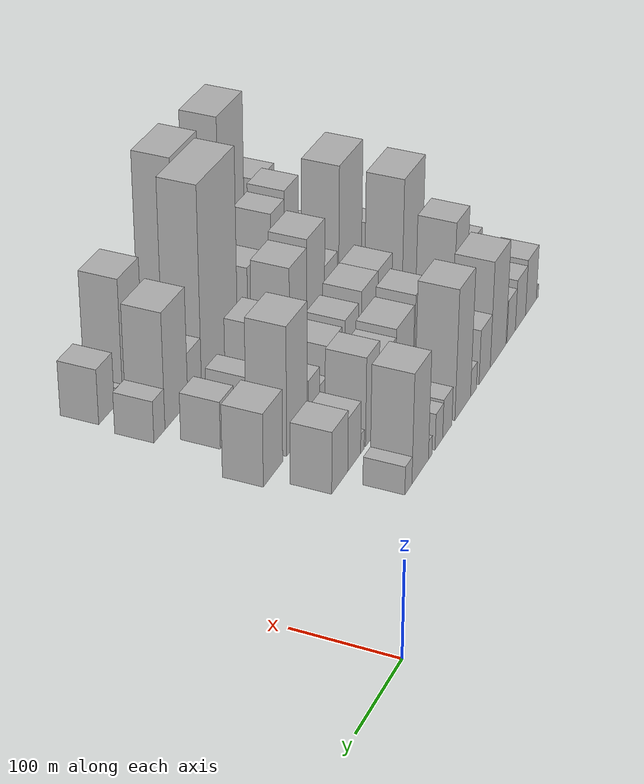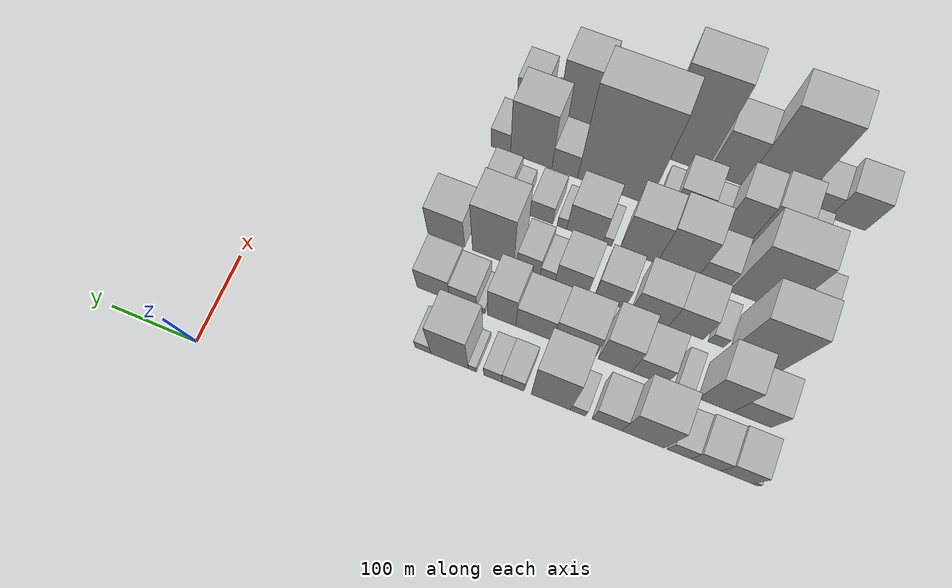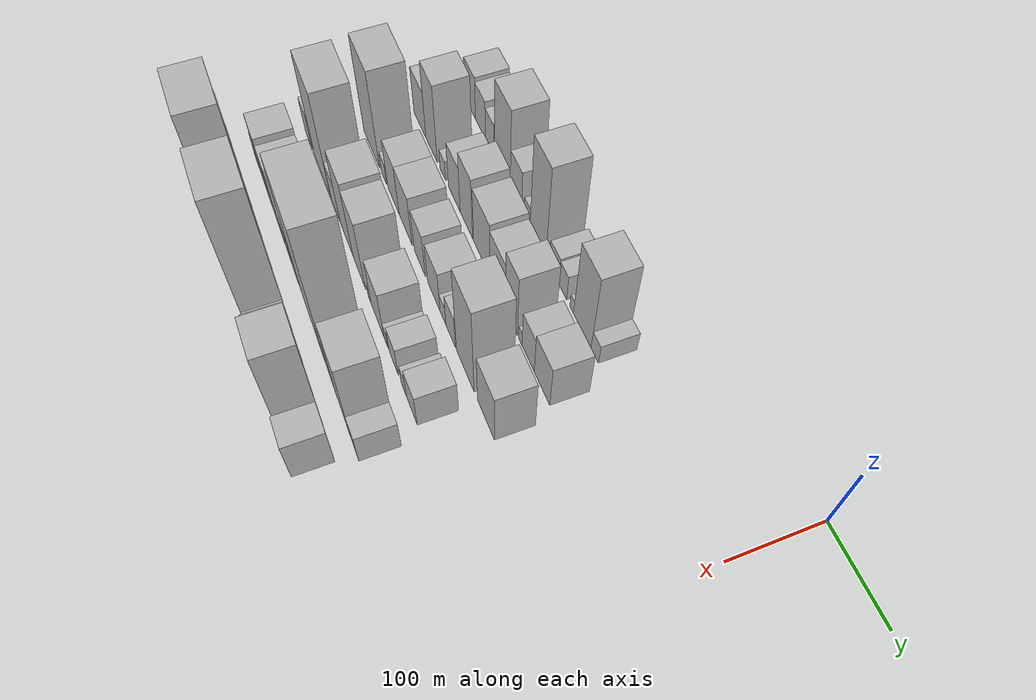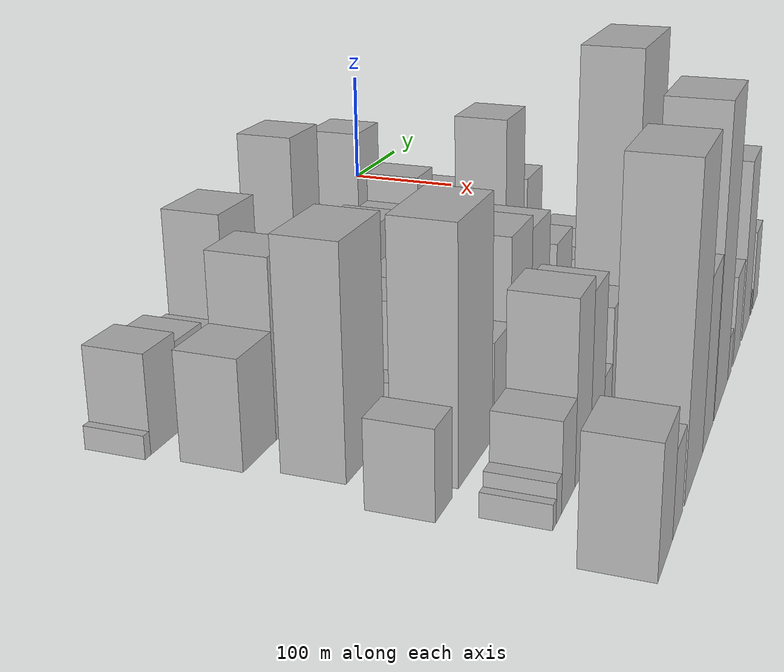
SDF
<sdf version="1.6">
 <world name="default">
  <model name="building_12">
   <static>1</static>
   <pose>100.0000 -579.2026 0 0.000000 0.000000 0.000000</pose>
   <link name="link">
    <pose>0 0 7.50 0 0 0</pose>
    <collision name="collision"><geometry><box><size>40.0000 6.0798 15.0000</size></box></geometry></collision>
    <visual name="visual">
     <cast_shadows>0</cast_shadows>
     <geometry><box><size>40.0000 6.0798 15.0000</size></box></geometry>
     <material>
      <script>
       <uri>model://HANNAS_wall/materials/scripts</uri>
       <uri>model://HANNAS_wall/materials/textures</uri>
       <name>vrc/HANNAS_wall</name>
      </script>
     </material>
    </visual>
   </link>
  </model>
  <model name="building_13">
   <static>1</static>
   <pose>100.0000 -559.5826 0 0.000000 0.000000 0.000000</pose>
   <link name="link">
    <pose>0 0 31.50 0 0 0</pose>
    <collision name="collision"><geometry><box><size>40.0000 33.1601 63.0000</size></box></geometry></collision>
    <visual name="visual">
     <cast_shadows>0</cast_shadows>
     <geometry><box><size>40.0000 33.1601 63.0000</size></box></geometry>
     <material>
      <script>
       <uri>model://HANNAS_wall/materials/scripts</uri>
       <uri>model://HANNAS_wall/materials/textures</uri>
       <name>vrc/HANNAS_wall</name>
      </script>
     </material>
    </visual>
   </link>
  </model>
  <model name="building_14">
   <static>1</static>
   <pose>100.0000 -527.5741 0 0.000000 0.000000 0.000000</pose>
   <link name="link">
    <pose>0 0 28.50 0 0 0</pose>
    <collision name="collision"><geometry><box><size>40.0000 30.8569 57.0000</size></box></geometry></collision>
    <visual name="visual">
     <cast_shadows>0</cast_shadows>
     <geometry><box><size>40.0000 30.8569 57.0000</size></box></geometry>
     <material>
      <script>
       <uri>model://HANNAS_wall/materials/scripts</uri>
       <uri>model://HANNAS_wall/materials/textures</uri>
       <name>vrc/HANNAS_wall</name>
      </script>
     </material>
    </visual>
   </link>
  </model>
  <model name="building_15">
   <static>1</static>
   <pose>100.0000 -499.6027 0 0.000000 0.000000 0.000000</pose>
   <link name="link">
    <pose>0 0 24.00 0 0 0</pose>
    <collision name="collision"><geometry><box><size>40.0000 25.0861 48.0000</size></box></geometry></collision>
    <visual name="visual">
     <cast_shadows>0</cast_shadows>
     <geometry><box><size>40.0000 25.0861 48.0000</size></box></geometry>
     <material>
      <script>
       <uri>model://HANNAS_wall/materials/scripts</uri>
       <uri>model://HANNAS_wall/materials/textures</uri>
       <name>vrc/HANNAS_wall</name>
      </script>
     </material>
    </visual>
   </link>
  </model>
  <model name="building_16">
   <static>1</static>
   <pose>100.0000 -461.4363 0 0.000000 0.000000 0.000000</pose>
   <link name="link">
    <pose>0 0 58.50 0 0 0</pose>
    <collision name="collision"><geometry><box><size>40.0000 45.2466 117.0000</size></box></geometry></collision>
    <visual name="visual">
     <cast_shadows>0</cast_shadows>
     <geometry><box><size>40.0000 45.2466 117.0000</size></box></geometry>
     <material>
      <script>
       <uri>model://HANNAS_wall/materials/scripts</uri>
       <uri>model://HANNAS_wall/materials/textures</uri>
       <name>vrc/HANNAS_wall</name>
      </script>
     </material>
    </visual>
   </link>
  </model>
  <model name="building_17">
   <static>1</static>
   <pose>100.0000 -422.9054 0 0.000000 0.000000 0.000000</pose>
   <link name="link">
    <pose>0 0 30.00 0 0 0</pose>
    <collision name="collision"><geometry><box><size>40.0000 31.8152 60.0000</size></box></geometry></collision>
    <visual name="visual">
     <cast_shadows>0</cast_shadows>
     <geometry><box><size>40.0000 31.8152 60.0000</size></box></geometry>
     <material>
      <script>
       <uri>model://HANNAS_wall/materials/scripts</uri>
       <uri>model://HANNAS_wall/materials/textures</uri>
       <name>vrc/HANNAS_wall</name>
      </script>
     </material>
    </visual>
   </link>
  </model>
  <model name="building_18">
   <static>1</static>
   <pose>100.0000 -391.7450 0 0.000000 0.000000 0.000000</pose>
   <link name="link">
    <pose>0 0 15.00 0 0 0</pose>
    <collision name="collision"><geometry><box><size>40.0000 16.5057 30.0000</size></box></geometry></collision>
    <visual name="visual">
     <cast_shadows>0</cast_shadows>
     <geometry><box><size>40.0000 16.5057 30.0000</size></box></geometry>
     <material>
      <script>
       <uri>model://HANNAS_wall/materials/scripts</uri>
       <uri>model://HANNAS_wall/materials/textures</uri>
       <name>vrc/HANNAS_wall</name>
      </script>
     </material>
    </visual>
   </link>
  </model>
  <model name="building_19">
   <static>1</static>
   <pose>100.0000 -362.2760 0 0.000000 0.000000 0.000000</pose>
   <link name="link">
    <pose>0 0 70.50 0 0 0</pose>
    <collision name="collision"><geometry><box><size>40.0000 42.4322 141.0000</size></box></geometry></collision>
    <visual name="visual">
     <cast_shadows>0</cast_shadows>
     <geometry><box><size>40.0000 42.4322 141.0000</size></box></geometry>
     <material>
      <script>
       <uri>model://HANNAS_wall/materials/scripts</uri>
       <uri>model://HANNAS_wall/materials/textures</uri>
       <name>vrc/HANNAS_wall</name>
      </script>
     </material>
    </visual>
   </link>
  </model>
  <model name="building_20">
   <static>1</static>
   <pose>100.0000 -320.8632 0 0.000000 0.000000 0.000000</pose>
   <link name="link">
    <pose>0 0 21.00 0 0 0</pose>
    <collision name="collision"><geometry><box><size>40.0000 24.3934 42.0000</size></box></geometry></collision>
    <visual name="visual">
     <cast_shadows>0</cast_shadows>
     <geometry><box><size>40.0000 24.3934 42.0000</size></box></geometry>
     <material>
      <script>
       <uri>model://HANNAS_wall/materials/scripts</uri>
       <uri>model://HANNAS_wall/materials/textures</uri>
       <name>vrc/HANNAS_wall</name>
      </script>
     </material>
    </visual>
   </link>
  </model>
  <model name="building_21">
   <static>1</static>
   <pose>100.0000 -298.7155 0 0.000000 0.000000 0.000000</pose>
   <link name="link">
    <pose>0 0 19.50 0 0 0</pose>
    <collision name="collision"><geometry><box><size>40.0000 19.9018 39.0000</size></box></geometry></collision>
    <visual name="visual">
     <cast_shadows>0</cast_shadows>
     <geometry><box><size>40.0000 19.9018 39.0000</size></box></geometry>
     <material>
      <script>
       <uri>model://HANNAS_wall/materials/scripts</uri>
       <uri>model://HANNAS_wall/materials/textures</uri>
       <name>vrc/HANNAS_wall</name>
      </script>
     </material>
    </visual>
   </link>
  </model>
  <model name="building_22">
   <static>1</static>
   <pose>100.0000 -276.2266 0 0.000000 0.000000 0.000000</pose>
   <link name="link">
    <pose>0 0 10.50 0 0 0</pose>
    <collision name="collision"><geometry><box><size>40.0000 9.0762 21.0000</size></box></geometry></collision>
    <visual name="visual">
     <cast_shadows>0</cast_shadows>
     <geometry><box><size>40.0000 9.0762 21.0000</size></box></geometry>
     <material>
      <script>
       <uri>model://HANNAS_wall/materials/scripts</uri>
       <uri>model://HANNAS_wall/materials/textures</uri>
       <name>vrc/HANNAS_wall</name>
      </script>
     </material>
    </visual>
   </link>
  </model>
  <model name="building_23">
   <static>1</static>
   <pose>100.0000 -250.9296 0 0.000000 0.000000 0.000000</pose>
   <link name="link">
    <pose>0 0 58.50 0 0 0</pose>
    <collision name="collision"><geometry><box><size>40.0000 41.5178 117.0000</size></box></geometry></collision>
    <visual name="visual">
     <cast_shadows>0</cast_shadows>
     <geometry><box><size>40.0000 41.5178 117.0000</size></box></geometry>
     <material>
      <script>
       <uri>model://HANNAS_wall/materials/scripts</uri>
       <uri>model://HANNAS_wall/materials/textures</uri>
       <name>vrc/HANNAS_wall</name>
      </script>
     </material>
    </visual>
   </link>
  </model>
  <model name="building_24">
   <static>1</static>
   <pose>100.0000 -221.4806 0 0.000000 0.000000 0.000000</pose>
   <link name="link">
    <pose>0 0 15.00 0 0 0</pose>
    <collision name="collision"><geometry><box><size>40.0000 17.3802 30.0000</size></box></geometry></collision>
    <visual name="visual">
     <cast_shadows>0</cast_shadows>
     <geometry><box><size>40.0000 17.3802 30.0000</size></box></geometry>
     <material>
      <script>
       <uri>model://HANNAS_wall/materials/scripts</uri>
       <uri>model://HANNAS_wall/materials/textures</uri>
       <name>vrc/HANNAS_wall</name>
      </script>
     </material>
    </visual>
   </link>
  </model>
  <model name="building_71">
   <static>1</static>
   <pose>160.0000 -557.1266 0 0.000000 0.000000 0.000000</pose>
   <link name="link">
    <pose>0 0 34.50 0 0 0</pose>
    <collision name="collision"><geometry><box><size>40.0000 40.5918 69.0000</size></box></geometry></collision>
    <visual name="visual">
     <cast_shadows>0</cast_shadows>
     <geometry><box><size>40.0000 40.5918 69.0000</size></box></geometry>
     <material>
      <script>
       <uri>model://HANNAS_wall/materials/scripts</uri>
       <uri>model://HANNAS_wall/materials/textures</uri>
       <name>vrc/HANNAS_wall</name>
      </script>
     </material>
    </visual>
   </link>
  </model>
  <model name="building_72">
   <static>1</static>
   <pose>160.0000 -518.2786 0 0.000000 0.000000 0.000000</pose>
   <link name="link">
    <pose>0 0 57.00 0 0 0</pose>
    <collision name="collision"><geometry><box><size>40.0000 37.1042 114.0000</size></box></geometry></collision>
    <visual name="visual">
     <cast_shadows>0</cast_shadows>
     <geometry><box><size>40.0000 37.1042 114.0000</size></box></geometry>
     <material>
      <script>
       <uri>model://HANNAS_wall/materials/scripts</uri>
       <uri>model://HANNAS_wall/materials/textures</uri>
       <name>vrc/HANNAS_wall</name>
      </script>
     </material>
    </visual>
   </link>
  </model>
  <model name="building_73">
   <static>1</static>
   <pose>160.0000 -481.8980 0 0.000000 0.000000 0.000000</pose>
   <link name="link">
    <pose>0 0 15.00 0 0 0</pose>
    <collision name="collision"><geometry><box><size>40.0000 17.6572 30.0000</size></box></geometry></collision>
    <visual name="visual">
     <cast_shadows>0</cast_shadows>
     <geometry><box><size>40.0000 17.6572 30.0000</size></box></geometry>
     <material>
      <script>
       <uri>model://HANNAS_wall/materials/scripts</uri>
       <uri>model://HANNAS_wall/materials/textures</uri>
       <name>vrc/HANNAS_wall</name>
      </script>
     </material>
    </visual>
   </link>
  </model>
  <model name="building_74">
   <static>1</static>
   <pose>160.0000 -446.1286 0 0.000000 0.000000 0.000000</pose>
   <link name="link">
    <pose>0 0 34.50 0 0 0</pose>
    <collision name="collision"><geometry><box><size>40.0000 35.8816 69.0000</size></box></geometry></collision>
    <visual name="visual">
     <cast_shadows>0</cast_shadows>
     <geometry><box><size>40.0000 35.8816 69.0000</size></box></geometry>
     <material>
      <script>
       <uri>model://HANNAS_wall/materials/scripts</uri>
       <uri>model://HANNAS_wall/materials/textures</uri>
       <name>vrc/HANNAS_wall</name>
      </script>
     </material>
    </visual>
   </link>
  </model>
  <model name="building_75">
   <static>1</static>
   <pose>160.0000 -409.8709 0 0.000000 0.000000 0.000000</pose>
   <link name="link">
    <pose>0 0 46.50 0 0 0</pose>
    <collision name="collision"><geometry><box><size>40.0000 36.6338 93.0000</size></box></geometry></collision>
    <visual name="visual">
     <cast_shadows>0</cast_shadows>
     <geometry><box><size>40.0000 36.6338 93.0000</size></box></geometry>
     <material>
      <script>
       <uri>model://HANNAS_wall/materials/scripts</uri>
       <uri>model://HANNAS_wall/materials/textures</uri>
       <name>vrc/HANNAS_wall</name>
      </script>
     </material>
    </visual>
   </link>
  </model>
  <model name="building_76">
   <static>1</static>
   <pose>160.0000 -365.3624 0 0.000000 0.000000 0.000000</pose>
   <link name="link">
    <pose>0 0 42.00 0 0 0</pose>
    <collision name="collision"><geometry><box><size>40.0000 46.3833 84.0000</size></box></geometry></collision>
    <visual name="visual">
     <cast_shadows>0</cast_shadows>
     <geometry><box><size>40.0000 46.3833 84.0000</size></box></geometry>
     <material>
      <script>
       <uri>model://HANNAS_wall/materials/scripts</uri>
       <uri>model://HANNAS_wall/materials/textures</uri>
       <name>vrc/HANNAS_wall</name>
      </script>
     </material>
    </visual>
   </link>
  </model>
  <model name="building_77">
   <static>1</static>
   <pose>160.0000 -321.1970 0 0.000000 0.000000 0.000000</pose>
   <link name="link">
    <pose>0 0 37.50 0 0 0</pose>
    <collision name="collision"><geometry><box><size>40.0000 41.9475 75.0000</size></box></geometry></collision>
    <visual name="visual">
     <cast_shadows>0</cast_shadows>
     <geometry><box><size>40.0000 41.9475 75.0000</size></box></geometry>
     <material>
      <script>
       <uri>model://HANNAS_wall/materials/scripts</uri>
       <uri>model://HANNAS_wall/materials/textures</uri>
       <name>vrc/HANNAS_wall</name>
      </script>
     </material>
    </visual>
   </link>
  </model>
  <model name="building_78">
   <static>1</static>
   <pose>160.0000 -284.4515 0 0.000000 0.000000 0.000000</pose>
   <link name="link">
    <pose>0 0 48.00 0 0 0</pose>
    <collision name="collision"><geometry><box><size>40.0000 31.5434 96.0000</size></box></geometry></collision>
    <visual name="visual">
     <cast_shadows>0</cast_shadows>
     <geometry><box><size>40.0000 31.5434 96.0000</size></box></geometry>
     <material>
      <script>
       <uri>model://HANNAS_wall/materials/scripts</uri>
       <uri>model://HANNAS_wall/materials/textures</uri>
       <name>vrc/HANNAS_wall</name>
      </script>
     </material>
    </visual>
   </link>
  </model>
  <model name="building_79">
   <static>1</static>
   <pose>160.0000 -261.2830 0 0.000000 0.000000 0.000000</pose>
   <link name="link">
    <pose>0 0 10.50 0 0 0</pose>
    <collision name="collision"><geometry><box><size>40.0000 8.7937 21.0000</size></box></geometry></collision>
    <visual name="visual">
     <cast_shadows>0</cast_shadows>
     <geometry><box><size>40.0000 8.7937 21.0000</size></box></geometry>
     <material>
      <script>
       <uri>model://HANNAS_wall/materials/scripts</uri>
       <uri>model://HANNAS_wall/materials/textures</uri>
       <name>vrc/HANNAS_wall</name>
      </script>
     </material>
    </visual>
   </link>
  </model>
  <model name="building_80">
   <static>1</static>
   <pose>160.0000 -241.4969 0 0.000000 0.000000 0.000000</pose>
   <link name="link">
    <pose>0 0 28.50 0 0 0</pose>
    <collision name="collision"><geometry><box><size>40.0000 30.7783 57.0000</size></box></geometry></collision>
    <visual name="visual">
     <cast_shadows>0</cast_shadows>
     <geometry><box><size>40.0000 30.7783 57.0000</size></box></geometry>
     <material>
      <script>
       <uri>model://HANNAS_wall/materials/scripts</uri>
       <uri>model://HANNAS_wall/materials/textures</uri>
       <name>vrc/HANNAS_wall</name>
      </script>
     </material>
    </visual>
   </link>
  </model>
  <model name="building_81">
   <static>1</static>
   <pose>160.0000 -207.3375 0 0.000000 0.000000 0.000000</pose>
   <link name="link">
    <pose>0 0 33.00 0 0 0</pose>
    <collision name="collision"><geometry><box><size>40.0000 37.5405 66.0000</size></box></geometry></collision>
    <visual name="visual">
     <cast_shadows>0</cast_shadows>
     <geometry><box><size>40.0000 37.5405 66.0000</size></box></geometry>
     <material>
      <script>
       <uri>model://HANNAS_wall/materials/scripts</uri>
       <uri>model://HANNAS_wall/materials/textures</uri>
       <name>vrc/HANNAS_wall</name>
      </script>
     </material>
    </visual>
   </link>
  </model>
  <model name="building_122">
   <static>1</static>
   <pose>220.0000 -542.9478 0 0.000000 0.000000 0.000000</pose>
   <link name="link">
    <pose>0 0 70.50 0 0 0</pose>
    <collision name="collision"><geometry><box><size>40.0000 56.3387 141.0000</size></box></geometry></collision>
    <visual name="visual">
     <cast_shadows>0</cast_shadows>
     <geometry><box><size>40.0000 56.3387 141.0000</size></box></geometry>
     <material>
      <script>
       <uri>model://HANNAS_wall/materials/scripts</uri>
       <uri>model://HANNAS_wall/materials/textures</uri>
       <name>vrc/HANNAS_wall</name>
      </script>
     </material>
    </visual>
   </link>
  </model>
  <model name="building_123">
   <static>1</static>
   <pose>220.0000 -499.2368 0 0.000000 0.000000 0.000000</pose>
   <link name="link">
    <pose>0 0 16.50 0 0 0</pose>
    <collision name="collision"><geometry><box><size>40.0000 17.0833 33.0000</size></box></geometry></collision>
    <visual name="visual">
     <cast_shadows>0</cast_shadows>
     <geometry><box><size>40.0000 17.0833 33.0000</size></box></geometry>
     <material>
      <script>
       <uri>model://HANNAS_wall/materials/scripts</uri>
       <uri>model://HANNAS_wall/materials/textures</uri>
       <name>vrc/HANNAS_wall</name>
      </script>
     </material>
    </visual>
   </link>
  </model>
  <model name="building_124">
   <static>1</static>
   <pose>220.0000 -466.9186 0 0.000000 0.000000 0.000000</pose>
   <link name="link">
    <pose>0 0 37.50 0 0 0</pose>
    <collision name="collision"><geometry><box><size>40.0000 37.5532 75.0000</size></box></geometry></collision>
    <visual name="visual">
     <cast_shadows>0</cast_shadows>
     <geometry><box><size>40.0000 37.5532 75.0000</size></box></geometry>
     <material>
      <script>
       <uri>model://HANNAS_wall/materials/scripts</uri>
       <uri>model://HANNAS_wall/materials/textures</uri>
       <name>vrc/HANNAS_wall</name>
      </script>
     </material>
    </visual>
   </link>
  </model>
  <model name="building_125">
   <static>1</static>
   <pose>220.0000 -427.1108 0 0.000000 0.000000 0.000000</pose>
   <link name="link">
    <pose>0 0 37.50 0 0 0</pose>
    <collision name="collision"><geometry><box><size>40.0000 42.0624 75.0000</size></box></geometry></collision>
    <visual name="visual">
     <cast_shadows>0</cast_shadows>
     <geometry><box><size>40.0000 42.0624 75.0000</size></box></geometry>
     <material>
      <script>
       <uri>model://HANNAS_wall/materials/scripts</uri>
       <uri>model://HANNAS_wall/materials/textures</uri>
       <name>vrc/HANNAS_wall</name>
      </script>
     </material>
    </visual>
   </link>
  </model>
  <model name="building_126">
   <static>1</static>
   <pose>220.0000 -382.0900 0 0.000000 0.000000 0.000000</pose>
   <link name="link">
    <pose>0 0 33.00 0 0 0</pose>
    <collision name="collision"><geometry><box><size>40.0000 33.9792 66.0000</size></box></geometry></collision>
    <visual name="visual">
     <cast_shadows>0</cast_shadows>
     <geometry><box><size>40.0000 33.9792 66.0000</size></box></geometry>
     <material>
      <script>
       <uri>model://HANNAS_wall/materials/scripts</uri>
       <uri>model://HANNAS_wall/materials/textures</uri>
       <name>vrc/HANNAS_wall</name>
      </script>
     </material>
    </visual>
   </link>
  </model>
  <model name="building_127">
   <static>1</static>
   <pose>220.0000 -339.6397 0 0.000000 0.000000 0.000000</pose>
   <link name="link">
    <pose>0 0 31.50 0 0 0</pose>
    <collision name="collision"><geometry><box><size>40.0000 36.9215 63.0000</size></box></geometry></collision>
    <visual name="visual">
     <cast_shadows>0</cast_shadows>
     <geometry><box><size>40.0000 36.9215 63.0000</size></box></geometry>
     <material>
      <script>
       <uri>model://HANNAS_wall/materials/scripts</uri>
       <uri>model://HANNAS_wall/materials/textures</uri>
       <name>vrc/HANNAS_wall</name>
      </script>
     </material>
    </visual>
   </link>
  </model>
  <model name="building_128">
   <static>1</static>
   <pose>220.0000 -312.5701 0 0.000000 0.000000 0.000000</pose>
   <link name="link">
    <pose>0 0 15.00 0 0 0</pose>
    <collision name="collision"><geometry><box><size>40.0000 17.2176 30.0000</size></box></geometry></collision>
    <visual name="visual">
     <cast_shadows>0</cast_shadows>
     <geometry><box><size>40.0000 17.2176 30.0000</size></box></geometry>
     <material>
      <script>
       <uri>model://HANNAS_wall/materials/scripts</uri>
       <uri>model://HANNAS_wall/materials/textures</uri>
       <name>vrc/HANNAS_wall</name>
      </script>
     </material>
    </visual>
   </link>
  </model>
  <model name="building_129">
   <static>1</static>
   <pose>220.0000 -290.6624 0 0.000000 0.000000 0.000000</pose>
   <link name="link">
    <pose>0 0 25.50 0 0 0</pose>
    <collision name="collision"><geometry><box><size>40.0000 26.5977 51.0000</size></box></geometry></collision>
    <visual name="visual">
     <cast_shadows>0</cast_shadows>
     <geometry><box><size>40.0000 26.5977 51.0000</size></box></geometry>
     <material>
      <script>
       <uri>model://HANNAS_wall/materials/scripts</uri>
       <uri>model://HANNAS_wall/materials/textures</uri>
       <name>vrc/HANNAS_wall</name>
      </script>
     </material>
    </visual>
   </link>
  </model>
  <model name="building_130">
   <static>1</static>
   <pose>220.0000 -250.5352 0 0.000000 0.000000 0.000000</pose>
   <link name="link">
    <pose>0 0 69.00 0 0 0</pose>
    <collision name="collision"><geometry><box><size>40.0000 47.6567 138.0000</size></box></geometry></collision>
    <visual name="visual">
     <cast_shadows>0</cast_shadows>
     <geometry><box><size>40.0000 47.6567 138.0000</size></box></geometry>
     <material>
      <script>
       <uri>model://HANNAS_wall/materials/scripts</uri>
       <uri>model://HANNAS_wall/materials/textures</uri>
       <name>vrc/HANNAS_wall</name>
      </script>
     </material>
    </visual>
   </link>
  </model>
  <model name="building_131">
   <static>1</static>
   <pose>220.0000 -196.1598 0 0.000000 0.000000 0.000000</pose>
   <link name="link">
    <pose>0 0 39.00 0 0 0</pose>
    <collision name="collision"><geometry><box><size>40.0000 43.0942 78.0000</size></box></geometry></collision>
    <visual name="visual">
     <cast_shadows>0</cast_shadows>
     <geometry><box><size>40.0000 43.0942 78.0000</size></box></geometry>
     <material>
      <script>
       <uri>model://HANNAS_wall/materials/scripts</uri>
       <uri>model://HANNAS_wall/materials/textures</uri>
       <name>vrc/HANNAS_wall</name>
      </script>
     </material>
    </visual>
   </link>
  </model>
  <model name="building_182">
   <static>1</static>
   <pose>280.0000 -579.2215 0 0.000000 0.000000 0.000000</pose>
   <link name="link">
    <pose>0 0 27.00 0 0 0</pose>
    <collision name="collision"><geometry><box><size>40.0000 27.0269 54.0000</size></box></geometry></collision>
    <visual name="visual">
     <cast_shadows>0</cast_shadows>
     <geometry><box><size>40.0000 27.0269 54.0000</size></box></geometry>
     <material>
      <script>
       <uri>model://HANNAS_wall/materials/scripts</uri>
       <uri>model://HANNAS_wall/materials/textures</uri>
       <name>vrc/HANNAS_wall</name>
      </script>
     </material>
    </visual>
   </link>
  </model>
  <model name="building_183">
   <static>1</static>
   <pose>280.0000 -525.3315 0 0.000000 0.000000 0.000000</pose>
   <link name="link">
    <pose>0 0 76.50 0 0 0</pose>
    <collision name="collision"><geometry><box><size>40.0000 60.7532 153.0000</size></box></geometry></collision>
    <visual name="visual">
     <cast_shadows>0</cast_shadows>
     <geometry><box><size>40.0000 60.7532 153.0000</size></box></geometry>
     <material>
      <script>
       <uri>model://HANNAS_wall/materials/scripts</uri>
       <uri>model://HANNAS_wall/materials/textures</uri>
       <name>vrc/HANNAS_wall</name>
      </script>
     </material>
    </visual>
   </link>
  </model>
  <model name="building_184">
   <static>1</static>
   <pose>280.0000 -475.3479 0 0.000000 0.000000 0.000000</pose>
   <link name="link">
    <pose>0 0 30.00 0 0 0</pose>
    <collision name="collision"><geometry><box><size>40.0000 33.2140 60.0000</size></box></geometry></collision>
    <visual name="visual">
     <cast_shadows>0</cast_shadows>
     <geometry><box><size>40.0000 33.2140 60.0000</size></box></geometry>
     <material>
      <script>
       <uri>model://HANNAS_wall/materials/scripts</uri>
       <uri>model://HANNAS_wall/materials/textures</uri>
       <name>vrc/HANNAS_wall</name>
      </script>
     </material>
    </visual>
   </link>
  </model>
  <model name="building_185">
   <static>1</static>
   <pose>280.0000 -436.3806 0 0.000000 0.000000 0.000000</pose>
   <link name="link">
    <pose>0 0 57.00 0 0 0</pose>
    <collision name="collision"><geometry><box><size>40.0000 44.7205 114.0000</size></box></geometry></collision>
    <visual name="visual">
     <cast_shadows>0</cast_shadows>
     <geometry><box><size>40.0000 44.7205 114.0000</size></box></geometry>
     <material>
      <script>
       <uri>model://HANNAS_wall/materials/scripts</uri>
       <uri>model://HANNAS_wall/materials/textures</uri>
       <name>vrc/HANNAS_wall</name>
      </script>
     </material>
    </visual>
   </link>
  </model>
  <model name="building_186">
   <static>1</static>
   <pose>280.0000 -393.0282 0 0.000000 0.000000 0.000000</pose>
   <link name="link">
    <pose>0 0 52.50 0 0 0</pose>
    <collision name="collision"><geometry><box><size>40.0000 41.9843 105.0000</size></box></geometry></collision>
    <visual name="visual">
     <cast_shadows>0</cast_shadows>
     <geometry><box><size>40.0000 41.9843 105.0000</size></box></geometry>
     <material>
      <script>
       <uri>model://HANNAS_wall/materials/scripts</uri>
       <uri>model://HANNAS_wall/materials/textures</uri>
       <name>vrc/HANNAS_wall</name>
      </script>
     </material>
    </visual>
   </link>
  </model>
  <model name="building_187">
   <static>1</static>
   <pose>280.0000 -358.0289 0 0.000000 0.000000 0.000000</pose>
   <link name="link">
    <pose>0 0 10.50 0 0 0</pose>
    <collision name="collision"><geometry><box><size>40.0000 10.0143 21.0000</size></box></geometry></collision>
    <visual name="visual">
     <cast_shadows>0</cast_shadows>
     <geometry><box><size>40.0000 10.0143 21.0000</size></box></geometry>
     <material>
      <script>
       <uri>model://HANNAS_wall/materials/scripts</uri>
       <uri>model://HANNAS_wall/materials/textures</uri>
       <name>vrc/HANNAS_wall</name>
      </script>
     </material>
    </visual>
   </link>
  </model>
  <model name="building_188">
   <static>1</static>
   <pose>280.0000 -332.3165 0 0.000000 0.000000 0.000000</pose>
   <link name="link">
    <pose>0 0 37.50 0 0 0</pose>
    <collision name="collision"><geometry><box><size>40.0000 41.4104 75.0000</size></box></geometry></collision>
    <visual name="visual">
     <cast_shadows>0</cast_shadows>
     <geometry><box><size>40.0000 41.4104 75.0000</size></box></geometry>
     <material>
      <script>
       <uri>model://HANNAS_wall/materials/scripts</uri>
       <uri>model://HANNAS_wall/materials/textures</uri>
       <name>vrc/HANNAS_wall</name>
      </script>
     </material>
    </visual>
   </link>
  </model>
  <model name="building_189">
   <static>1</static>
   <pose>280.0000 -306.0316 0 0.000000 0.000000 0.000000</pose>
   <link name="link">
    <pose>0 0 13.50 0 0 0</pose>
    <collision name="collision"><geometry><box><size>40.0000 11.1593 27.0000</size></box></geometry></collision>
    <visual name="visual">
     <cast_shadows>0</cast_shadows>
     <geometry><box><size>40.0000 11.1593 27.0000</size></box></geometry>
     <material>
      <script>
       <uri>model://HANNAS_wall/materials/scripts</uri>
       <uri>model://HANNAS_wall/materials/textures</uri>
       <name>vrc/HANNAS_wall</name>
      </script>
     </material>
    </visual>
   </link>
  </model>
  <model name="building_190">
   <static>1</static>
   <pose>280.0000 -282.2108 0 0.000000 0.000000 0.000000</pose>
   <link name="link">
    <pose>0 0 22.50 0 0 0</pose>
    <collision name="collision"><geometry><box><size>40.0000 26.4824 45.0000</size></box></geometry></collision>
    <visual name="visual">
     <cast_shadows>0</cast_shadows>
     <geometry><box><size>40.0000 26.4824 45.0000</size></box></geometry>
     <material>
      <script>
       <uri>model://HANNAS_wall/materials/scripts</uri>
       <uri>model://HANNAS_wall/materials/textures</uri>
       <name>vrc/HANNAS_wall</name>
      </script>
     </material>
    </visual>
   </link>
  </model>
  <model name="building_191">
   <static>1</static>
   <pose>280.0000 -252.5327 0 0.000000 0.000000 0.000000</pose>
   <link name="link">
    <pose>0 0 15.00 0 0 0</pose>
    <collision name="collision"><geometry><box><size>40.0000 16.8738 30.0000</size></box></geometry></collision>
    <visual name="visual">
     <cast_shadows>0</cast_shadows>
     <geometry><box><size>40.0000 16.8738 30.0000</size></box></geometry>
     <material>
      <script>
       <uri>model://HANNAS_wall/materials/scripts</uri>
       <uri>model://HANNAS_wall/materials/textures</uri>
       <name>vrc/HANNAS_wall</name>
      </script>
     </material>
    </visual>
   </link>
  </model>
  <model name="building_192">
   <static>1</static>
   <pose>280.0000 -228.9864 0 0.000000 0.000000 0.000000</pose>
   <link name="link">
    <pose>0 0 25.50 0 0 0</pose>
    <collision name="collision"><geometry><box><size>40.0000 30.2188 51.0000</size></box></geometry></collision>
    <visual name="visual">
     <cast_shadows>0</cast_shadows>
     <geometry><box><size>40.0000 30.2188 51.0000</size></box></geometry>
     <material>
      <script>
       <uri>model://HANNAS_wall/materials/scripts</uri>
       <uri>model://HANNAS_wall/materials/textures</uri>
       <name>vrc/HANNAS_wall</name>
      </script>
     </material>
    </visual>
   </link>
  </model>
  <model name="building_237">
   <static>1</static>
   <pose>340.0000 -577.4016 0 0.000000 0.000000 0.000000</pose>
   <link name="link">
    <pose>0 0 7.50 0 0 0</pose>
    <collision name="collision"><geometry><box><size>40.0000 6.3559 15.0000</size></box></geometry></collision>
    <visual name="visual">
     <cast_shadows>0</cast_shadows>
     <geometry><box><size>40.0000 6.3559 15.0000</size></box></geometry>
     <material>
      <script>
       <uri>model://HANNAS_wall/materials/scripts</uri>
       <uri>model://HANNAS_wall/materials/textures</uri>
       <name>vrc/HANNAS_wall</name>
      </script>
     </material>
    </visual>
   </link>
  </model>
  <model name="building_238">
   <static>1</static>
   <pose>340.0000 -568.7785 0 0.000000 0.000000 0.000000</pose>
   <link name="link">
    <pose>0 0 12.00 0 0 0</pose>
    <collision name="collision"><geometry><box><size>40.0000 10.8903 24.0000</size></box></geometry></collision>
    <visual name="visual">
     <cast_shadows>0</cast_shadows>
     <geometry><box><size>40.0000 10.8903 24.0000</size></box></geometry>
     <material>
      <script>
       <uri>model://HANNAS_wall/materials/scripts</uri>
       <uri>model://HANNAS_wall/materials/textures</uri>
       <name>vrc/HANNAS_wall</name>
      </script>
     </material>
    </visual>
   </link>
  </model>
  <model name="building_239">
   <static>1</static>
   <pose>340.0000 -548.8130 0 0.000000 0.000000 0.000000</pose>
   <link name="link">
    <pose>0 0 27.00 0 0 0</pose>
    <collision name="collision"><geometry><box><size>40.0000 29.0405 54.0000</size></box></geometry></collision>
    <visual name="visual">
     <cast_shadows>0</cast_shadows>
     <geometry><box><size>40.0000 29.0405 54.0000</size></box></geometry>
     <material>
      <script>
       <uri>model://HANNAS_wall/materials/scripts</uri>
       <uri>model://HANNAS_wall/materials/textures</uri>
       <name>vrc/HANNAS_wall</name>
      </script>
     </material>
    </visual>
   </link>
  </model>
  <model name="building_240">
   <static>1</static>
   <pose>340.0000 -516.5194 0 0.000000 0.000000 0.000000</pose>
   <link name="link">
    <pose>0 0 55.50 0 0 0</pose>
    <collision name="collision"><geometry><box><size>40.0000 35.5468 111.0000</size></box></geometry></collision>
    <visual name="visual">
     <cast_shadows>0</cast_shadows>
     <geometry><box><size>40.0000 35.5468 111.0000</size></box></geometry>
     <material>
      <script>
       <uri>model://HANNAS_wall/materials/scripts</uri>
       <uri>model://HANNAS_wall/materials/textures</uri>
       <name>vrc/HANNAS_wall</name>
      </script>
     </material>
    </visual>
   </link>
  </model>
  <model name="building_241">
   <static>1</static>
   <pose>340.0000 -482.0860 0 0.000000 0.000000 0.000000</pose>
   <link name="link">
    <pose>0 0 51.00 0 0 0</pose>
    <collision name="collision"><geometry><box><size>40.0000 33.3200 102.0000</size></box></geometry></collision>
    <visual name="visual">
     <cast_shadows>0</cast_shadows>
     <geometry><box><size>40.0000 33.3200 102.0000</size></box></geometry>
     <material>
      <script>
       <uri>model://HANNAS_wall/materials/scripts</uri>
       <uri>model://HANNAS_wall/materials/textures</uri>
       <name>vrc/HANNAS_wall</name>
      </script>
     </material>
    </visual>
   </link>
  </model>
  <model name="building_242">
   <static>1</static>
   <pose>340.0000 -455.4277 0 0.000000 0.000000 0.000000</pose>
   <link name="link">
    <pose>0 0 18.00 0 0 0</pose>
    <collision name="collision"><geometry><box><size>40.0000 19.9965 36.0000</size></box></geometry></collision>
    <visual name="visual">
     <cast_shadows>0</cast_shadows>
     <geometry><box><size>40.0000 19.9965 36.0000</size></box></geometry>
     <material>
      <script>
       <uri>model://HANNAS_wall/materials/scripts</uri>
       <uri>model://HANNAS_wall/materials/textures</uri>
       <name>vrc/HANNAS_wall</name>
      </script>
     </material>
    </visual>
   </link>
  </model>
  <model name="building_243">
   <static>1</static>
   <pose>340.0000 -426.9072 0 0.000000 0.000000 0.000000</pose>
   <link name="link">
    <pose>0 0 36.00 0 0 0</pose>
    <collision name="collision"><geometry><box><size>40.0000 37.0447 72.0000</size></box></geometry></collision>
    <visual name="visual">
     <cast_shadows>0</cast_shadows>
     <geometry><box><size>40.0000 37.0447 72.0000</size></box></geometry>
     <material>
      <script>
       <uri>model://HANNAS_wall/materials/scripts</uri>
       <uri>model://HANNAS_wall/materials/textures</uri>
       <name>vrc/HANNAS_wall</name>
      </script>
     </material>
    </visual>
   </link>
  </model>
  <model name="building_244">
   <static>1</static>
   <pose>340.0000 -400.2776 0 0.000000 0.000000 0.000000</pose>
   <link name="link">
    <pose>0 0 15.00 0 0 0</pose>
    <collision name="collision"><geometry><box><size>40.0000 16.2145 30.0000</size></box></geometry></collision>
    <visual name="visual">
     <cast_shadows>0</cast_shadows>
     <geometry><box><size>40.0000 16.2145 30.0000</size></box></geometry>
     <material>
      <script>
       <uri>model://HANNAS_wall/materials/scripts</uri>
       <uri>model://HANNAS_wall/materials/textures</uri>
       <name>vrc/HANNAS_wall</name>
      </script>
     </material>
    </visual>
   </link>
  </model>
  <model name="building_245">
   <static>1</static>
   <pose>340.0000 -342.8511 0 0.000000 0.000000 0.000000</pose>
   <link name="link">
    <pose>0 0 108.00 0 0 0</pose>
    <collision name="collision"><geometry><box><size>40.0000 82.6384 216.0000</size></box></geometry></collision>
    <visual name="visual">
     <cast_shadows>0</cast_shadows>
     <geometry><box><size>40.0000 82.6384 216.0000</size></box></geometry>
     <material>
      <script>
       <uri>model://HANNAS_wall/materials/scripts</uri>
       <uri>model://HANNAS_wall/materials/textures</uri>
       <name>vrc/HANNAS_wall</name>
      </script>
     </material>
    </visual>
   </link>
  </model>
  <model name="building_246">
   <static>1</static>
   <pose>340.0000 -286.4956 0 0.000000 0.000000 0.000000</pose>
   <link name="link">
    <pose>0 0 27.00 0 0 0</pose>
    <collision name="collision"><geometry><box><size>40.0000 30.0727 54.0000</size></box></geometry></collision>
    <visual name="visual">
     <cast_shadows>0</cast_shadows>
     <geometry><box><size>40.0000 30.0727 54.0000</size></box></geometry>
     <material>
      <script>
       <uri>model://HANNAS_wall/materials/scripts</uri>
       <uri>model://HANNAS_wall/materials/textures</uri>
       <name>vrc/HANNAS_wall</name>
      </script>
     </material>
    </visual>
   </link>
  </model>
  <model name="building_247">
   <static>1</static>
   <pose>340.0000 -246.9568 0 0.000000 0.000000 0.000000</pose>
   <link name="link">
    <pose>0 0 63.00 0 0 0</pose>
    <collision name="collision"><geometry><box><size>40.0000 49.0049 126.0000</size></box></geometry></collision>
    <visual name="visual">
     <cast_shadows>0</cast_shadows>
     <geometry><box><size>40.0000 49.0049 126.0000</size></box></geometry>
     <material>
      <script>
       <uri>model://HANNAS_wall/materials/scripts</uri>
       <uri>model://HANNAS_wall/materials/textures</uri>
       <name>vrc/HANNAS_wall</name>
      </script>
     </material>
    </visual>
   </link>
  </model>
  <model name="building_248">
   <static>1</static>
   <pose>340.0000 -210.8271 0 0.000000 0.000000 0.000000</pose>
   <link name="link">
    <pose>0 0 22.50 0 0 0</pose>
    <collision name="collision"><geometry><box><size>40.0000 23.2546 45.0000</size></box></geometry></collision>
    <visual name="visual">
     <cast_shadows>0</cast_shadows>
     <geometry><box><size>40.0000 23.2546 45.0000</size></box></geometry>
     <material>
      <script>
       <uri>model://HANNAS_wall/materials/scripts</uri>
       <uri>model://HANNAS_wall/materials/textures</uri>
       <name>vrc/HANNAS_wall</name>
      </script>
     </material>
    </visual>
   </link>
  </model>
  <model name="building_295">
   <static>1</static>
   <pose>400.0000 -590.0051 0 0.000000 0.000000 0.000000</pose>
   <link name="link">
    <pose>0 0 37.50 0 0 0</pose>
    <collision name="collision"><geometry><box><size>40.0000 40.2620 75.0000</size></box></geometry></collision>
    <visual name="visual">
     <cast_shadows>0</cast_shadows>
     <geometry><box><size>40.0000 40.2620 75.0000</size></box></geometry>
     <material>
      <script>
       <uri>model://HANNAS_wall/materials/scripts</uri>
       <uri>model://HANNAS_wall/materials/textures</uri>
       <name>vrc/HANNAS_wall</name>
      </script>
     </material>
    </visual>
   </link>
  </model>
  <model name="building_296">
   <static>1</static>
   <pose>400.0000 -555.0204 0 0.000000 0.000000 0.000000</pose>
   <link name="link">
    <pose>0 0 25.50 0 0 0</pose>
    <collision name="collision"><geometry><box><size>40.0000 29.7074 51.0000</size></box></geometry></collision>
    <visual name="visual">
     <cast_shadows>0</cast_shadows>
     <geometry><box><size>40.0000 29.7074 51.0000</size></box></geometry>
     <material>
      <script>
       <uri>model://HANNAS_wall/materials/scripts</uri>
       <uri>model://HANNAS_wall/materials/textures</uri>
       <name>vrc/HANNAS_wall</name>
      </script>
     </material>
    </visual>
   </link>
  </model>
  <model name="building_297">
   <static>1</static>
   <pose>400.0000 -503.7179 0 0.000000 0.000000 0.000000</pose>
   <link name="link">
    <pose>0 0 96.00 0 0 0</pose>
    <collision name="collision"><geometry><box><size>40.0000 60.8975 192.0000</size></box></geometry></collision>
    <visual name="visual">
     <cast_shadows>0</cast_shadows>
     <geometry><box><size>40.0000 60.8975 192.0000</size></box></geometry>
     <material>
      <script>
       <uri>model://HANNAS_wall/materials/scripts</uri>
       <uri>model://HANNAS_wall/materials/textures</uri>
       <name>vrc/HANNAS_wall</name>
      </script>
     </material>
    </visual>
   </link>
  </model>
  <model name="building_298">
   <static>1</static>
   <pose>400.0000 -452.7256 0 0.000000 0.000000 0.000000</pose>
   <link name="link">
    <pose>0 0 54.00 0 0 0</pose>
    <collision name="collision"><geometry><box><size>40.0000 41.0870 108.0000</size></box></geometry></collision>
    <visual name="visual">
     <cast_shadows>0</cast_shadows>
     <geometry><box><size>40.0000 41.0870 108.0000</size></box></geometry>
     <material>
      <script>
       <uri>model://HANNAS_wall/materials/scripts</uri>
       <uri>model://HANNAS_wall/materials/textures</uri>
       <name>vrc/HANNAS_wall</name>
      </script>
     </material>
    </visual>
   </link>
  </model>
  <model name="building_299">
   <static>1</static>
   <pose>400.0000 -399.3534 0 0.000000 0.000000 0.000000</pose>
   <link name="link">
    <pose>0 0 99.00 0 0 0</pose>
    <collision name="collision"><geometry><box><size>40.0000 59.6574 198.0000</size></box></geometry></collision>
    <visual name="visual">
     <cast_shadows>0</cast_shadows>
     <geometry><box><size>40.0000 59.6574 198.0000</size></box></geometry>
     <material>
      <script>
       <uri>model://HANNAS_wall/materials/scripts</uri>
       <uri>model://HANNAS_wall/materials/textures</uri>
       <name>vrc/HANNAS_wall</name>
      </script>
     </material>
    </visual>
   </link>
  </model>
  <model name="building_300">
   <static>1</static>
   <pose>400.0000 -360.7352 0 0.000000 0.000000 0.000000</pose>
   <link name="link">
    <pose>0 0 15.00 0 0 0</pose>
    <collision name="collision"><geometry><box><size>40.0000 17.5790 30.0000</size></box></geometry></collision>
    <visual name="visual">
     <cast_shadows>0</cast_shadows>
     <geometry><box><size>40.0000 17.5790 30.0000</size></box></geometry>
     <material>
      <script>
       <uri>model://HANNAS_wall/materials/scripts</uri>
       <uri>model://HANNAS_wall/materials/textures</uri>
       <name>vrc/HANNAS_wall</name>
      </script>
     </material>
    </visual>
   </link>
  </model>
  <model name="building_301">
   <static>1</static>
   <pose>400.0000 -326.4815 0 0.000000 0.000000 0.000000</pose>
   <link name="link">
    <pose>0 0 31.50 0 0 0</pose>
    <collision name="collision"><geometry><box><size>40.0000 36.9285 63.0000</size></box></geometry></collision>
    <visual name="visual">
     <cast_shadows>0</cast_shadows>
     <geometry><box><size>40.0000 36.9285 63.0000</size></box></geometry>
     <material>
      <script>
       <uri>model://HANNAS_wall/materials/scripts</uri>
       <uri>model://HANNAS_wall/materials/textures</uri>
       <name>vrc/HANNAS_wall</name>
      </script>
     </material>
    </visual>
   </link>
  </model>
  <model name="building_302">
   <static>1</static>
   <pose>400.0000 -277.2372 0 0.000000 0.000000 0.000000</pose>
   <link name="link">
    <pose>0 0 64.50 0 0 0</pose>
    <collision name="collision"><geometry><box><size>40.0000 43.5602 129.0000</size></box></geometry></collision>
    <visual name="visual">
     <cast_shadows>0</cast_shadows>
     <geometry><box><size>40.0000 43.5602 129.0000</size></box></geometry>
     <material>
      <script>
       <uri>model://HANNAS_wall/materials/scripts</uri>
       <uri>model://HANNAS_wall/materials/textures</uri>
       <name>vrc/HANNAS_wall</name>
      </script>
     </material>
    </visual>
   </link>
  </model>
  <model name="building_303">
   <static>1</static>
   <pose>400.0000 -247.3331 0 0.000000 0.000000 0.000000</pose>
   <link name="link">
    <pose>0 0 9.00 0 0 0</pose>
    <collision name="collision"><geometry><box><size>40.0000 8.2479 18.0000</size></box></geometry></collision>
    <visual name="visual">
     <cast_shadows>0</cast_shadows>
     <geometry><box><size>40.0000 8.2479 18.0000</size></box></geometry>
     <material>
      <script>
       <uri>model://HANNAS_wall/materials/scripts</uri>
       <uri>model://HANNAS_wall/materials/textures</uri>
       <name>vrc/HANNAS_wall</name>
      </script>
     </material>
    </visual>
   </link>
  </model>
  <model name="building_304">
   <static>1</static>
   <pose>400.0000 -222.2251 0 0.000000 0.000000 0.000000</pose>
   <link name="link">
    <pose>0 0 30.00 0 0 0</pose>
    <collision name="collision"><geometry><box><size>40.0000 31.9682 60.0000</size></box></geometry></collision>
    <visual name="visual">
     <cast_shadows>0</cast_shadows>
     <geometry><box><size>40.0000 31.9682 60.0000</size></box></geometry>
     <material>
      <script>
       <uri>model://HANNAS_wall/materials/scripts</uri>
       <uri>model://HANNAS_wall/materials/textures</uri>
       <name>vrc/HANNAS_wall</name>
      </script>
     </material>
    </visual>
   </link>
  </model>
 </world>
</sdf>
